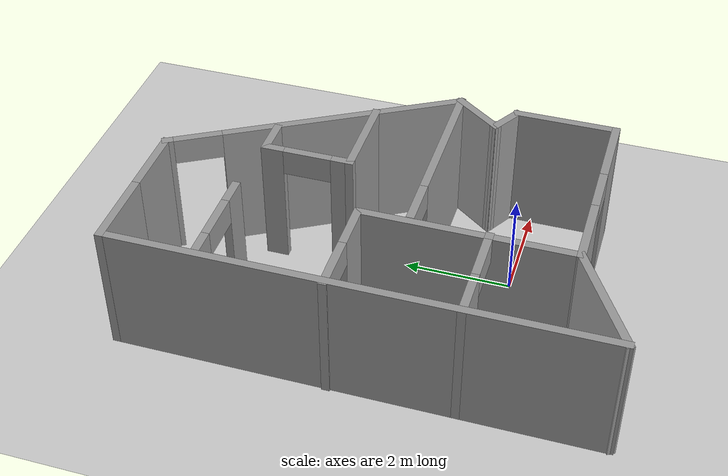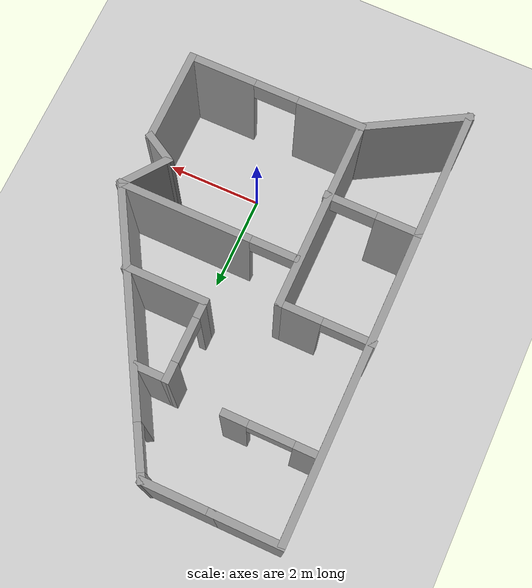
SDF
<sdf version="1.7">
 <world name="default">
  <light name="sun" type="directional">
   <pose>0 0 10 0 -0 0</pose>
   <diffuse>0.8 0.8 0.8 1</diffuse>
   <specular>0.2 0.2 0.2 1</specular>
   <attenuation>
    <range>1000</range>
    <constant>0.9</constant>
    <linear>0.01</linear>
    <quadratic>0.001</quadratic>
   </attenuation>
   <direction>-0.5 0.1 -0.9</direction>
   <spot><inner_angle>0</inner_angle><outer_angle>0</outer_angle><falloff>0</falloff></spot>
  </light>
  <model name="ground_plane">
   <static>1</static>
   <link name="link">
    <collision name="collision">
     <geometry><plane><normal>0 0 1</normal><size>100 100</size></plane></geometry>
     <surface>
      <contact><collide_bitmask>65535</collide_bitmask></contact>
      <friction><ode><mu>100</mu><mu2>50</mu2></ode></friction>
     </surface>
    </collision>
    <visual name="visual">
     <cast_shadows>0</cast_shadows>
     <geometry><plane><normal>0 0 1</normal><size>100 100</size></plane></geometry>
     <material>
      <script><uri>file://media/materials/scripts/gazebo.material</uri><name>Gazebo/Grey</name></script>
     </material>
    </visual>
   </link>
  </model>
  <gravity>0 0 -9.8</gravity>
  <magnetic_field>6e-06 2.3e-05 -4.2e-05</magnetic_field>
  <atmosphere type="adiabatic"/>
  <physics type="ode">
   <max_step_size>0.001</max_step_size>
   <real_time_factor>1</real_time_factor>
   <real_time_update_rate>1000</real_time_update_rate>
  </physics>
  <scene><ambient>0.4 0.4 0.4 1</ambient><background>0.7 0.7 0.7 1</background><shadows>1</shadows></scene>
  <spherical_coordinates>
   <surface_model>EARTH_WGS84</surface_model>
   <latitude_deg>0</latitude_deg>
   <longitude_deg>0</longitude_deg>
   <elevation>0</elevation>
   <heading_deg>0</heading_deg>
  </spherical_coordinates>
  <model name="irregularHouse">
   <pose>-0.640562 2.41957 0 0 -0 0</pose>
   <link name="Wall_0">
    <collision name="Wall_0_Collision">
     <geometry><box><size>1.5 0.15 2.5</size></box></geometry>
     <pose>0 0 1.25 0 -0 0</pose>
    </collision>
    <visual name="Wall_0_Visual">
     <pose>0 0 1.25 0 -0 0</pose>
     <geometry><box><size>1.5 0.15 2.5</size></box></geometry>
     <material>
      <script><uri>file://media/materials/scripts/gazebo.material</uri><name>Gazebo/Grey</name></script>
      <ambient>1 1 1 1</ambient>
     </material>
     <meta><layer>0</layer></meta>
    </visual>
    <pose>-2.07433 3.99123 0 0 -0 3.14159</pose>
   </link>
   <link name="Wall_1">
    <collision name="Wall_1_Collision">
     <geometry><box><size>9 0.15 2.5</size></box></geometry>
     <pose>0 0 1.25 0 -0 0</pose>
    </collision>
    <visual name="Wall_1_Visual">
     <pose>0 0 1.25 0 -0 0</pose>
     <geometry><box><size>9 0.15 2.5</size></box></geometry>
     <material>
      <script><uri>file://media/materials/scripts/gazebo.material</uri><name>Gazebo/Grey</name></script>
      <ambient>1 1 1 1</ambient>
     </material>
     <meta><layer>0</layer></meta>
    </visual>
    <pose>-2.74933 -0.433774 0 0 -0 -1.5708</pose>
   </link>
   <link name="Wall_15">
    <collision name="Wall_15_Collision">
     <geometry><box><size>1.75 0.15 2.5</size></box></geometry>
     <pose>0 0 1.25 0 -0 0</pose>
    </collision>
    <visual name="Wall_15_Visual">
     <pose>0 0 1.25 0 -0 0</pose>
     <geometry><box><size>1.75 0.15 2.5</size></box></geometry>
     <material>
      <script><uri>file://media/materials/scripts/gazebo.material</uri><name>Gazebo/Grey</name></script>
      <ambient>1 1 1 1</ambient>
     </material>
     <meta><layer>0</layer></meta>
    </visual>
    <pose>1.13124 0.584853 0 0 -0 3.14159</pose>
   </link>
   <link name="Wall_16">
    <pose>0.331239 1.38485 0 0 -0 1.5708</pose>
    <visual name="Wall_16_Visual_0">
     <pose>-0.662223 0 1.25 0 -0 0</pose>
     <geometry><box><size>0.425554 0.15 2.5</size></box></geometry>
     <material>
      <script><uri>file://media/materials/scripts/gazebo.material</uri><name>Gazebo/Grey</name></script>
      <ambient>1 1 1 1</ambient>
     </material>
     <meta><layer>0</layer></meta>
    </visual>
    <collision name="Wall_16_Collision_0">
     <geometry><box><size>0.425554 0.15 2.5</size></box></geometry>
     <pose>-0.662223 0 1.25 0 -0 0</pose>
    </collision>
    <visual name="Wall_16_Visual_1">
     <pose>0.662777 0 1.25 0 -0 0</pose>
     <geometry><box><size>0.424446 0.15 2.5</size></box></geometry>
     <material>
      <script><uri>file://media/materials/scripts/gazebo.material</uri><name>Gazebo/Grey</name></script>
      <ambient>1 1 1 1</ambient>
     </material>
     <meta><layer>0</layer></meta>
    </visual>
    <collision name="Wall_16_Collision_1">
     <geometry><box><size>0.424446 0.15 2.5</size></box></geometry>
     <pose>0.662777 0 1.25 0 -0 0</pose>
    </collision>
    <visual name="Wall_16_Visual_2">
     <pose>0.000554 0 2.25 0 -0 0</pose>
     <geometry><box><size>0.9 0.15 0.5</size></box></geometry>
     <material>
      <script><uri>file://media/materials/scripts/gazebo.material</uri><name>Gazebo/Grey</name></script>
      <ambient>1 1 1 1</ambient>
     </material>
     <meta><layer>0</layer></meta>
    </visual>
    <collision name="Wall_16_Collision_2">
     <geometry><box><size>0.9 0.15 0.5</size></box></geometry>
     <pose>0.000554 0 2.25 0 -0 0</pose>
    </collision>
   </link>
   <link name="Wall_17">
    <collision name="Wall_17_Collision">
     <geometry><box><size>0.75 0.15 2.5</size></box></geometry>
     <pose>0 0 1.25 0 -0 0</pose>
    </collision>
    <visual name="Wall_17_Visual">
     <pose>0 0 1.25 0 -0 0</pose>
     <geometry><box><size>0.75 0.15 2.5</size></box></geometry>
     <material>
      <script><uri>file://media/materials/scripts/gazebo.material</uri><name>Gazebo/Grey</name></script>
      <ambient>1 1 1 1</ambient>
     </material>
     <meta><layer>0</layer></meta>
    </visual>
    <pose>0.631239 2.18485 0 0 -0 0</pose>
   </link>
   <link name="Wall_2">
    <collision name="Wall_2_Collision">
     <geometry><box><size>2.25 0.15 2.5</size></box></geometry>
     <pose>0 0 1.25 0 -0 0</pose>
    </collision>
    <visual name="Wall_2_Visual">
     <pose>0 0 1.25 0 -0 0</pose>
     <geometry><box><size>2.25 0.15 2.5</size></box></geometry>
     <material>
      <script><uri>file://media/materials/scripts/gazebo.material</uri><name>Gazebo/Grey</name></script>
      <ambient>1 1 1 1</ambient>
     </material>
     <meta><layer>0</layer></meta>
    </visual>
    <pose>-1.84 -4.33377 0 0 -0 0.523599</pose>
   </link>
   <link name="Wall_21">
    <pose>-1.85568 0.041226 0 0 -0 3.14159</pose>
    <visual name="Wall_21_Visual_0">
     <pose>-0.535413 0 1.25 0 -0 0</pose>
     <geometry><box><size>0.929174 0.15 2.5</size></box></geometry>
     <material>
      <script><uri>file://media/materials/scripts/gazebo.material</uri><name>Gazebo/Grey</name></script>
      <ambient>1 1 1 1</ambient>
     </material>
     <meta><layer>0</layer></meta>
    </visual>
    <collision name="Wall_21_Collision_0">
     <geometry><box><size>0.929174 0.15 2.5</size></box></geometry>
     <pose>-0.535413 0 1.25 0 -0 0</pose>
    </collision>
    <visual name="Wall_21_Visual_1">
     <pose>0.914587 0 1.25 0 -0 0</pose>
     <geometry><box><size>0.170826 0.15 2.5</size></box></geometry>
     <material>
      <script><uri>file://media/materials/scripts/gazebo.material</uri><name>Gazebo/Grey</name></script>
      <ambient>1 1 1 1</ambient>
     </material>
     <meta><layer>0</layer></meta>
    </visual>
    <collision name="Wall_21_Collision_1">
     <geometry><box><size>0.170826 0.15 2.5</size></box></geometry>
     <pose>0.914587 0 1.25 0 -0 0</pose>
    </collision>
    <visual name="Wall_21_Visual_2">
     <pose>0.379174 0 2.25 0 -0 0</pose>
     <geometry><box><size>0.9 0.15 0.5</size></box></geometry>
     <material>
      <script><uri>file://media/materials/scripts/gazebo.material</uri><name>Gazebo/Grey</name></script>
      <ambient>1 1 1 1</ambient>
     </material>
     <meta><layer>0</layer></meta>
    </visual>
    <collision name="Wall_21_Collision_2">
     <geometry><box><size>0.9 0.15 0.5</size></box></geometry>
     <pose>0.379174 0 2.25 0 -0 0</pose>
    </collision>
   </link>
   <link name="Wall_23">
    <pose>-1.80195 2.3085 0 0 -0 0</pose>
    <visual name="Wall_23_Visual_0">
     <pose>-0.714831 0 1.25 0 -0 0</pose>
     <geometry><box><size>0.570338 0.15 2.5</size></box></geometry>
     <material>
      <script><uri>file://media/materials/scripts/gazebo.material</uri><name>Gazebo/Grey</name></script>
      <ambient>1 1 1 1</ambient>
     </material>
     <meta><layer>0</layer></meta>
    </visual>
    <collision name="Wall_23_Collision_0">
     <geometry><box><size>0.570338 0.15 2.5</size></box></geometry>
     <pose>-0.714831 0 1.25 0 -0 0</pose>
    </collision>
    <visual name="Wall_23_Visual_1">
     <pose>0.735169 0 1.25 0 -0 0</pose>
     <geometry><box><size>0.529662 0.15 2.5</size></box></geometry>
     <material>
      <script><uri>file://media/materials/scripts/gazebo.material</uri><name>Gazebo/Grey</name></script>
      <ambient>1 1 1 1</ambient>
     </material>
     <meta><layer>0</layer></meta>
    </visual>
    <collision name="Wall_23_Collision_1">
     <geometry><box><size>0.529662 0.15 2.5</size></box></geometry>
     <pose>0.735169 0 1.25 0 -0 0</pose>
    </collision>
    <visual name="Wall_23_Visual_2">
     <pose>0.020338 0 2.25 0 -0 0</pose>
     <geometry><box><size>0.9 0.15 0.5</size></box></geometry>
     <material>
      <script><uri>file://media/materials/scripts/gazebo.material</uri><name>Gazebo/Grey</name></script>
      <ambient>1 1 1 1</ambient>
     </material>
     <meta><layer>0</layer></meta>
    </visual>
    <collision name="Wall_23_Collision_2">
     <geometry><box><size>0.9 0.15 0.5</size></box></geometry>
     <pose>0.020338 0 2.25 0 -0 0</pose>
    </collision>
   </link>
   <link name="Wall_26">
    <pose>-1.82482 -2.25097 0 0 -0 0</pose>
    <visual name="Wall_26_Visual_0">
     <pose>-0.534615 0 1.25 0 -0 0</pose>
     <geometry><box><size>0.93077 0.15 2.5</size></box></geometry>
     <material>
      <script><uri>file://media/materials/scripts/gazebo.material</uri><name>Gazebo/Grey</name></script>
      <ambient>1 1 1 1</ambient>
     </material>
     <meta><layer>0</layer></meta>
    </visual>
    <collision name="Wall_26_Collision_0">
     <geometry><box><size>0.93077 0.15 2.5</size></box></geometry>
     <pose>-0.534615 0 1.25 0 -0 0</pose>
    </collision>
    <visual name="Wall_26_Visual_1">
     <pose>0.915385 0 1.25 0 -0 0</pose>
     <geometry><box><size>0.16923 0.15 2.5</size></box></geometry>
     <material>
      <script><uri>file://media/materials/scripts/gazebo.material</uri><name>Gazebo/Grey</name></script>
      <ambient>1 1 1 1</ambient>
     </material>
     <meta><layer>0</layer></meta>
    </visual>
    <collision name="Wall_26_Collision_1">
     <geometry><box><size>0.16923 0.15 2.5</size></box></geometry>
     <pose>0.915385 0 1.25 0 -0 0</pose>
    </collision>
    <visual name="Wall_26_Visual_2">
     <pose>0.38077 0 2.25 0 -0 0</pose>
     <geometry><box><size>0.9 0.15 0.5</size></box></geometry>
     <material>
      <script><uri>file://media/materials/scripts/gazebo.material</uri><name>Gazebo/Grey</name></script>
      <ambient>1 1 1 1</ambient>
     </material>
     <meta><layer>0</layer></meta>
    </visual>
    <collision name="Wall_26_Collision_2">
     <geometry><box><size>0.9 0.15 0.5</size></box></geometry>
     <pose>0.38077 0 2.25 0 -0 0</pose>
    </collision>
   </link>
   <link name="Wall_28">
    <pose>0.869322 -3.80877 0 0 -0 0</pose>
    <visual name="Wall_28_Visual_0">
     <pose>-1.16971 0 1.25 0 -0 0</pose>
     <geometry><box><size>1.41059 0.15 2.5</size></box></geometry>
     <material>
      <script><uri>file://media/materials/scripts/gazebo.material</uri><name>Gazebo/Grey</name></script>
      <ambient>1 1 1 1</ambient>
     </material>
     <meta><layer>0</layer></meta>
    </visual>
    <collision name="Wall_28_Collision_0">
     <geometry><box><size>1.41059 0.15 2.5</size></box></geometry>
     <pose>-1.16971 0 1.25 0 -0 0</pose>
    </collision>
    <visual name="Wall_28_Visual_1">
     <pose>1.15529 0 1.25 0 -0 0</pose>
     <geometry><box><size>1.43941 0.15 2.5</size></box></geometry>
     <material>
      <script><uri>file://media/materials/scripts/gazebo.material</uri><name>Gazebo/Grey</name></script>
      <ambient>1 1 1 1</ambient>
     </material>
     <meta><layer>0</layer></meta>
    </visual>
    <collision name="Wall_28_Collision_1">
     <geometry><box><size>1.43941 0.15 2.5</size></box></geometry>
     <pose>1.15529 0 1.25 0 -0 0</pose>
    </collision>
    <visual name="Wall_28_Visual_2">
     <pose>-0.014414 0 2.25 0 -0 0</pose>
     <geometry><box><size>0.9 0.15 0.5</size></box></geometry>
     <material>
      <script><uri>file://media/materials/scripts/gazebo.material</uri><name>Gazebo/Grey</name></script>
      <ambient>1 1 1 1</ambient>
     </material>
     <meta><layer>0</layer></meta>
    </visual>
    <collision name="Wall_28_Collision_2">
     <geometry><box><size>0.9 0.15 0.5</size></box></geometry>
     <pose>-0.014414 0 2.25 0 -0 0</pose>
    </collision>
   </link>
   <link name="Wall_3">
    <collision name="Wall_3_Collision">
     <geometry><box><size>4 0.15 2.5</size></box></geometry>
     <pose>0 0 1.25 0 -0 0</pose>
    </collision>
    <visual name="Wall_3_Visual">
     <pose>0 0 1.25 0 -0 0</pose>
     <geometry><box><size>4 0.15 2.5</size></box></geometry>
     <material>
      <script><uri>file://media/materials/scripts/gazebo.material</uri><name>Gazebo/Grey</name></script>
      <ambient>1 1 1 1</ambient>
     </material>
     <meta><layer>0</layer></meta>
    </visual>
    <pose>-0.930678 -1.88377 0 0 -0 1.5708</pose>
   </link>
   <link name="Wall_31">
    <collision name="Wall_31_Collision">
     <geometry><box><size>2 0.15 2.5</size></box></geometry>
     <pose>0 0 1.25 0 -0 0</pose>
    </collision>
    <visual name="Wall_31_Visual">
     <pose>0 0 1.25 0 -0 0</pose>
     <geometry><box><size>2 0.15 2.5</size></box></geometry>
     <material>
      <script><uri>file://media/materials/scripts/gazebo.material</uri><name>Gazebo/Grey</name></script>
      <ambient>1 1 1 1</ambient>
     </material>
     <meta><layer>0</layer></meta>
    </visual>
    <pose>2.66932 -2.88377 0 0 -0 1.5708</pose>
   </link>
   <link name="Wall_32">
    <collision name="Wall_32_Collision">
     <geometry><box><size>0.75 0.15 2.5</size></box></geometry>
     <pose>0 0 1.25 0 -0 0</pose>
    </collision>
    <visual name="Wall_32_Visual">
     <pose>0 0 1.25 0 -0 0</pose>
     <geometry><box><size>0.75 0.15 2.5</size></box></geometry>
     <material>
      <script><uri>file://media/materials/scripts/gazebo.material</uri><name>Gazebo/Grey</name></script>
      <ambient>1 1 1 1</ambient>
     </material>
     <meta><layer>0</layer></meta>
    </visual>
    <pose>2.40951 -1.80877 0 0 -0 2.61799</pose>
   </link>
   <link name="Wall_33">
    <collision name="Wall_33_Collision">
     <geometry><box><size>1.15078 0.15 2.5</size></box></geometry>
     <pose>0 0 1.25 0 -0 0</pose>
    </collision>
    <visual name="Wall_33_Visual">
     <pose>0 0 1.25 0 -0 0</pose>
     <geometry><box><size>1.15078 0.15 2.5</size></box></geometry>
     <material>
      <script><uri>file://media/materials/scripts/gazebo.material</uri><name>Gazebo/Grey</name></script>
      <ambient>1 1 1 1</ambient>
     </material>
     <meta><layer>0</layer></meta>
    </visual>
    <pose>2.45019 -1.25865 0 0 -0 0.926681</pose>
   </link>
   <link name="Wall_6">
    <collision name="Wall_6_Collision">
     <geometry><box><size>1.5 0.15 2.5</size></box></geometry>
     <pose>0 0 1.25 0 -0 0</pose>
    </collision>
    <visual name="Wall_6_Visual">
     <pose>0 0 1.25 0 -0 0</pose>
     <geometry><box><size>1.5 0.15 2.5</size></box></geometry>
     <material>
      <script><uri>file://media/materials/scripts/gazebo.material</uri><name>Gazebo/Grey</name></script>
      <ambient>1 1 1 1</ambient>
     </material>
     <meta><layer>0</layer></meta>
    </visual>
    <pose>-0.724331 3.99123 0 0 -0 0</pose>
   </link>
   <link name="Wall_7">
    <pose>1.35067 1.56635 0 0 -0 -1.0472</pose>
    <visual name="Wall_7_Visual_0">
     <pose>-2.76912 0 1.25 0 -0 0</pose>
     <geometry><box><size>0.211763 0.15 2.5</size></box></geometry>
     <material>
      <script><uri>file://media/materials/scripts/gazebo.material</uri><name>Gazebo/Grey</name></script>
      <ambient>1 1 1 1</ambient>
     </material>
     <meta><layer>0</layer></meta>
    </visual>
    <collision name="Wall_7_Collision_0">
     <geometry><box><size>0.211763 0.15 2.5</size></box></geometry>
     <pose>-2.76912 0 1.25 0 -0 0</pose>
    </collision>
    <visual name="Wall_7_Visual_1">
     <pose>0.555882 0 1.25 0 -0 0</pose>
     <geometry><box><size>4.63824 0.15 2.5</size></box></geometry>
     <material>
      <script><uri>file://media/materials/scripts/gazebo.material</uri><name>Gazebo/Grey</name></script>
      <ambient>1 1 1 1</ambient>
     </material>
     <meta><layer>0</layer></meta>
    </visual>
    <collision name="Wall_7_Collision_1">
     <geometry><box><size>4.63824 0.15 2.5</size></box></geometry>
     <pose>0.555882 0 1.25 0 -0 0</pose>
    </collision>
    <visual name="Wall_7_Visual_2">
     <pose>-2.21324 0 2.25 0 -0 0</pose>
     <geometry><box><size>0.9 0.15 0.5</size></box></geometry>
     <material>
      <script><uri>file://media/materials/scripts/gazebo.material</uri><name>Gazebo/Grey</name></script>
      <ambient>1 1 1 1</ambient>
     </material>
     <meta><layer>0</layer></meta>
    </visual>
    <collision name="Wall_7_Collision_2">
     <geometry><box><size>0.9 0.15 0.5</size></box></geometry>
     <pose>-2.21324 0 2.25 0 -0 0</pose>
    </collision>
   </link>
   <link name="Wall_8">
    <pose>0.950669 -0.858516 0 0 -0 3.14159</pose>
    <visual name="Wall_8_Visual_0">
     <pose>-0.488778 0 1.25 0 -0 0</pose>
     <geometry><box><size>2.77244 0.15 2.5</size></box></geometry>
     <material>
      <script><uri>file://media/materials/scripts/gazebo.material</uri><name>Gazebo/Grey</name></script>
      <ambient>1 1 1 1</ambient>
     </material>
     <meta><layer>0</layer></meta>
    </visual>
    <collision name="Wall_8_Collision_0">
     <geometry><box><size>2.77244 0.15 2.5</size></box></geometry>
     <pose>-0.488778 0 1.25 0 -0 0</pose>
    </collision>
    <visual name="Wall_8_Visual_1">
     <pose>1.83622 0 1.25 0 -0 0</pose>
     <geometry><box><size>0.077556 0.15 2.5</size></box></geometry>
     <material>
      <script><uri>file://media/materials/scripts/gazebo.material</uri><name>Gazebo/Grey</name></script>
      <ambient>1 1 1 1</ambient>
     </material>
     <meta><layer>0</layer></meta>
    </visual>
    <collision name="Wall_8_Collision_1">
     <geometry><box><size>0.077556 0.15 2.5</size></box></geometry>
     <pose>1.83622 0 1.25 0 -0 0</pose>
    </collision>
    <visual name="Wall_8_Visual_2">
     <pose>1.34744 0 2.25 0 -0 0</pose>
     <geometry><box><size>0.9 0.15 0.5</size></box></geometry>
     <material>
      <script><uri>file://media/materials/scripts/gazebo.material</uri><name>Gazebo/Grey</name></script>
      <ambient>1 1 1 1</ambient>
     </material>
     <meta><layer>0</layer></meta>
    </visual>
    <collision name="Wall_8_Collision_2">
     <geometry><box><size>0.9 0.15 0.5</size></box></geometry>
     <pose>1.34744 0 2.25 0 -0 0</pose>
    </collision>
   </link>
   <static>1</static>
  </model>
 </world>
</sdf>
